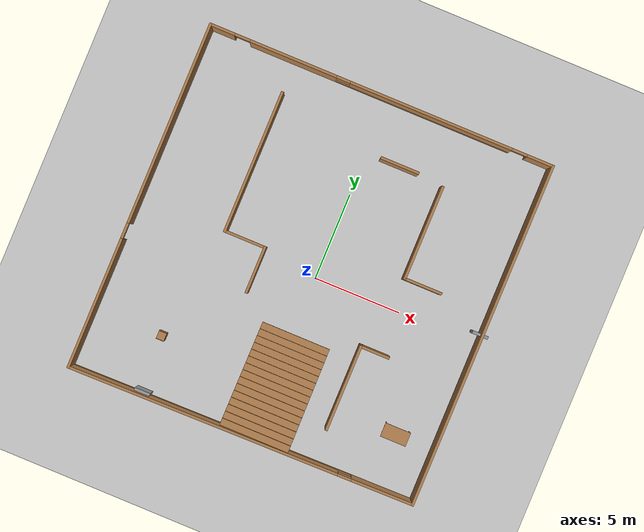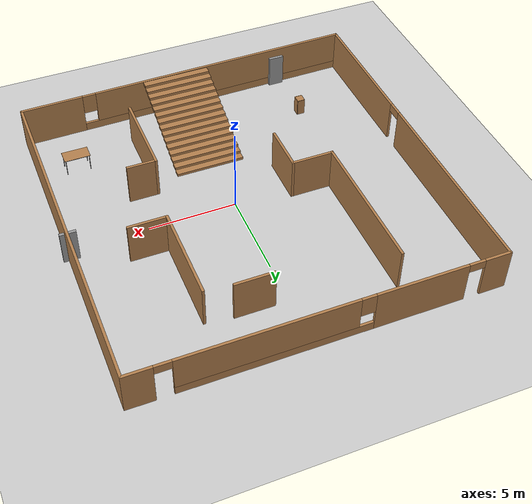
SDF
<sdf version="1.7">
 <world name="default">
  <light name="sun" type="directional">
   <pose>0 0 10 0 -0 0</pose>
   <diffuse>0.8 0.8 0.8 1</diffuse>
   <specular>0.2 0.2 0.2 1</specular>
   <attenuation>
    <range>1000</range>
    <constant>0.9</constant>
    <linear>0.01</linear>
    <quadratic>0.001</quadratic>
   </attenuation>
   <direction>-0.5 0.1 -0.9</direction>
   <spot><inner_angle>0</inner_angle><outer_angle>0</outer_angle><falloff>0</falloff></spot>
  </light>
  <model name="ground_plane">
   <static>1</static>
   <link name="link">
    <collision name="collision">
     <geometry><plane><normal>0 0 1</normal><size>100 100</size></plane></geometry>
     <surface><friction><ode><mu>100</mu><mu2>50</mu2></ode></friction></surface>
    </collision>
    <visual name="visual">
     <cast_shadows>0</cast_shadows>
     <geometry><plane><normal>0 0 1</normal><size>100 100</size></plane></geometry>
     <material>
      <script><uri>file://media/materials/scripts/gazebo.material</uri><name>Gazebo/Grey</name></script>
     </material>
    </visual>
   </link>
  </model>
  <gravity>0 0 -9.8</gravity>
  <magnetic_field>6e-06 2.3e-05 -4.2e-05</magnetic_field>
  <atmosphere type="adiabatic"/>
  <physics type="ode">
   <max_step_size>0.001</max_step_size>
   <real_time_factor>1</real_time_factor>
   <real_time_update_rate>0</real_time_update_rate>
   <ode>
    <solver><type>quick</type><iters>20</iters><sor>1.3</sor></solver>
    <constraints>
     <cfm>0.0001</cfm>
     <erp>0.2</erp>
     <contact_max_correcting_vel>1.0</contact_max_correcting_vel>
     <contact_surface_layer>0.01</contact_surface_layer>
    </constraints>
   </ode>
  </physics>
  <scene><ambient>0.4 0.4 0.4 1</ambient><background>0.7 0.7 0.7 1</background><shadows>1</shadows></scene>
  <plugin name="gazebo_ros_state" filename="libgazebo_ros_state.so">
   <ros><namespace>/gazebo</namespace></ros>
   <update_rate>50.0</update_rate>
  </plugin>
  <audio><device>default</device></audio>
  <spherical_coordinates>
   <surface_model>EARTH_WGS84</surface_model>
   <latitude_deg>0</latitude_deg>
   <longitude_deg>0</longitude_deg>
   <elevation>0</elevation>
   <heading_deg>0</heading_deg>
  </spherical_coordinates>
  <model name="world1.world">
   <pose>-0.4935 0.496537 0 0 -0 0</pose>
   <link name="Door_3">
    <collision name="Door_3_Collision">
     <geometry><box><size>0.9 0.17 2</size></box></geometry>
     <pose>0 0 1 0 -0 0</pose>
    </collision>
    <visual name="Door_3_Visual">
     <pose>0 0 1 0 -0 0</pose>
     <geometry><box><size>0.9 0.17 2</size></box></geometry>
     <material>
      <script><uri>file://media/materials/scripts/gazebo.material</uri><name>Gazebo/Grey</name></script>
     </material>
    </visual>
    <pose>-5.86221 -9.81218 0 0 -0 0</pose>
   </link>
   <link name="Door_4">
    <collision name="Door_4_Collision">
     <geometry><box><size>0.9 0.17 2</size></box></geometry>
     <pose>0 0 1 0 -0 0</pose>
    </collision>
    <visual name="Door_4_Visual">
     <pose>0 0 1 0 -0 0</pose>
     <geometry><box><size>0.9 0.17 2</size></box></geometry>
     <material>
      <script><uri>file://media/materials/scripts/gazebo.material</uri><name>Gazebo/Grey</name></script>
     </material>
    </visual>
    <pose>9.95489 0.103926 0 0 -0 0</pose>
   </link>
   <link name="Stairs_0">
    <visual name="Stairs_0_Visual_0">
     <pose>0.723174 -4.03294 0.083333 0 -0 0</pose>
     <geometry><box><size>4.01133 0.397588 0.166667</size></box></geometry>
     <material>
      <script><uri>file://media/materials/scripts/gazebo.material</uri><name>Gazebo/Wood</name></script>
      <ambient>1 1 1 1</ambient>
     </material>
     <meta><layer>0</layer></meta>
    </visual>
    <collision name="Stairs_0_Collision_0">
     <geometry><box><size>4.01133 0.397588 0.166667</size></box></geometry>
     <pose>0.723174 -4.03294 0.083333 0 -0 0</pose>
    </collision>
    <visual name="Stairs_0_Visual_1">
     <pose>0.723174 -4.43053 0.25 0 -0 0</pose>
     <geometry><box><size>4.01133 0.397588 0.166667</size></box></geometry>
     <material>
      <script><uri>file://media/materials/scripts/gazebo.material</uri><name>Gazebo/Wood</name></script>
      <ambient>1 1 1 1</ambient>
     </material>
     <meta><layer>0</layer></meta>
    </visual>
    <collision name="Stairs_0_Collision_1">
     <geometry><box><size>4.01133 0.397588 0.166667</size></box></geometry>
     <pose>0.723174 -4.43053 0.25 0 -0 0</pose>
    </collision>
    <visual name="Stairs_0_Visual_2">
     <pose>0.723174 -4.82812 0.416667 0 -0 0</pose>
     <geometry><box><size>4.01133 0.397588 0.166667</size></box></geometry>
     <material>
      <script><uri>file://media/materials/scripts/gazebo.material</uri><name>Gazebo/Wood</name></script>
      <ambient>1 1 1 1</ambient>
     </material>
     <meta><layer>0</layer></meta>
    </visual>
    <collision name="Stairs_0_Collision_2">
     <geometry><box><size>4.01133 0.397588 0.166667</size></box></geometry>
     <pose>0.723174 -4.82812 0.416667 0 -0 0</pose>
    </collision>
    <visual name="Stairs_0_Visual_3">
     <pose>0.723174 -5.2257 0.583333 0 -0 0</pose>
     <geometry><box><size>4.01133 0.397588 0.166667</size></box></geometry>
     <material>
      <script><uri>file://media/materials/scripts/gazebo.material</uri><name>Gazebo/Wood</name></script>
      <ambient>1 1 1 1</ambient>
     </material>
     <meta><layer>0</layer></meta>
    </visual>
    <collision name="Stairs_0_Collision_3">
     <geometry><box><size>4.01133 0.397588 0.166667</size></box></geometry>
     <pose>0.723174 -5.2257 0.583333 0 -0 0</pose>
    </collision>
    <visual name="Stairs_0_Visual_4">
     <pose>0.723174 -5.62329 0.75 0 -0 0</pose>
     <geometry><box><size>4.01133 0.397588 0.166667</size></box></geometry>
     <material>
      <script><uri>file://media/materials/scripts/gazebo.material</uri><name>Gazebo/Wood</name></script>
      <ambient>1 1 1 1</ambient>
     </material>
     <meta><layer>0</layer></meta>
    </visual>
    <collision name="Stairs_0_Collision_4">
     <geometry><box><size>4.01133 0.397588 0.166667</size></box></geometry>
     <pose>0.723174 -5.62329 0.75 0 -0 0</pose>
    </collision>
    <visual name="Stairs_0_Visual_5">
     <pose>0.723174 -6.02088 0.916667 0 -0 0</pose>
     <geometry><box><size>4.01133 0.397588 0.166667</size></box></geometry>
     <material>
      <script><uri>file://media/materials/scripts/gazebo.material</uri><name>Gazebo/Wood</name></script>
      <ambient>1 1 1 1</ambient>
     </material>
     <meta><layer>0</layer></meta>
    </visual>
    <collision name="Stairs_0_Collision_5">
     <geometry><box><size>4.01133 0.397588 0.166667</size></box></geometry>
     <pose>0.723174 -6.02088 0.916667 0 -0 0</pose>
    </collision>
    <visual name="Stairs_0_Visual_6">
     <pose>0.723174 -6.41847 1.08333 0 -0 0</pose>
     <geometry><box><size>4.01133 0.397588 0.166667</size></box></geometry>
     <material>
      <script><uri>file://media/materials/scripts/gazebo.material</uri><name>Gazebo/Wood</name></script>
      <ambient>1 1 1 1</ambient>
     </material>
     <meta><layer>0</layer></meta>
    </visual>
    <collision name="Stairs_0_Collision_6">
     <geometry><box><size>4.01133 0.397588 0.166667</size></box></geometry>
     <pose>0.723174 -6.41847 1.08333 0 -0 0</pose>
    </collision>
    <visual name="Stairs_0_Visual_7">
     <pose>0.723174 -6.81606 1.25 0 -0 0</pose>
     <geometry><box><size>4.01133 0.397588 0.166667</size></box></geometry>
     <material>
      <script><uri>file://media/materials/scripts/gazebo.material</uri><name>Gazebo/Wood</name></script>
      <ambient>1 1 1 1</ambient>
     </material>
     <meta><layer>0</layer></meta>
    </visual>
    <collision name="Stairs_0_Collision_7">
     <geometry><box><size>4.01133 0.397588 0.166667</size></box></geometry>
     <pose>0.723174 -6.81606 1.25 0 -0 0</pose>
    </collision>
    <visual name="Stairs_0_Visual_8">
     <pose>0.723174 -7.21364 1.41667 0 -0 0</pose>
     <geometry><box><size>4.01133 0.397588 0.166667</size></box></geometry>
     <material>
      <script><uri>file://media/materials/scripts/gazebo.material</uri><name>Gazebo/Wood</name></script>
      <ambient>1 1 1 1</ambient>
     </material>
     <meta><layer>0</layer></meta>
    </visual>
    <collision name="Stairs_0_Collision_8">
     <geometry><box><size>4.01133 0.397588 0.166667</size></box></geometry>
     <pose>0.723174 -7.21364 1.41667 0 -0 0</pose>
    </collision>
    <visual name="Stairs_0_Visual_9">
     <pose>0.723174 -7.61123 1.58333 0 -0 0</pose>
     <geometry><box><size>4.01133 0.397588 0.166667</size></box></geometry>
     <material>
      <script><uri>file://media/materials/scripts/gazebo.material</uri><name>Gazebo/Wood</name></script>
      <ambient>1 1 1 1</ambient>
     </material>
     <meta><layer>0</layer></meta>
    </visual>
    <collision name="Stairs_0_Collision_9">
     <geometry><box><size>4.01133 0.397588 0.166667</size></box></geometry>
     <pose>0.723174 -7.61123 1.58333 0 -0 0</pose>
    </collision>
    <visual name="Stairs_0_Visual_10">
     <pose>0.723174 -8.00882 1.75 0 -0 0</pose>
     <geometry><box><size>4.01133 0.397588 0.166667</size></box></geometry>
     <material>
      <script><uri>file://media/materials/scripts/gazebo.material</uri><name>Gazebo/Wood</name></script>
      <ambient>1 1 1 1</ambient>
     </material>
     <meta><layer>0</layer></meta>
    </visual>
    <collision name="Stairs_0_Collision_10">
     <geometry><box><size>4.01133 0.397588 0.166667</size></box></geometry>
     <pose>0.723174 -8.00882 1.75 0 -0 0</pose>
    </collision>
    <visual name="Stairs_0_Visual_11">
     <pose>0.723174 -8.40641 1.91667 0 -0 0</pose>
     <geometry><box><size>4.01133 0.397588 0.166667</size></box></geometry>
     <material>
      <script><uri>file://media/materials/scripts/gazebo.material</uri><name>Gazebo/Wood</name></script>
      <ambient>1 1 1 1</ambient>
     </material>
     <meta><layer>0</layer></meta>
    </visual>
    <collision name="Stairs_0_Collision_11">
     <geometry><box><size>4.01133 0.397588 0.166667</size></box></geometry>
     <pose>0.723174 -8.40641 1.91667 0 -0 0</pose>
    </collision>
    <visual name="Stairs_0_Visual_12">
     <pose>0.723174 -8.804 2.08333 0 -0 0</pose>
     <geometry><box><size>4.01133 0.397588 0.166667</size></box></geometry>
     <material>
      <script><uri>file://media/materials/scripts/gazebo.material</uri><name>Gazebo/Wood</name></script>
      <ambient>1 1 1 1</ambient>
     </material>
     <meta><layer>0</layer></meta>
    </visual>
    <collision name="Stairs_0_Collision_12">
     <geometry><box><size>4.01133 0.397588 0.166667</size></box></geometry>
     <pose>0.723174 -8.804 2.08333 0 -0 0</pose>
    </collision>
    <visual name="Stairs_0_Visual_13">
     <pose>0.723174 -9.20158 2.25 0 -0 0</pose>
     <geometry><box><size>4.01133 0.397588 0.166667</size></box></geometry>
     <material>
      <script><uri>file://media/materials/scripts/gazebo.material</uri><name>Gazebo/Wood</name></script>
      <ambient>1 1 1 1</ambient>
     </material>
     <meta><layer>0</layer></meta>
    </visual>
    <collision name="Stairs_0_Collision_13">
     <geometry><box><size>4.01133 0.397588 0.166667</size></box></geometry>
     <pose>0.723174 -9.20158 2.25 0 -0 0</pose>
    </collision>
    <visual name="Stairs_0_Visual_14">
     <pose>0.723174 -9.59917 2.41667 0 -0 0</pose>
     <geometry><box><size>4.01133 0.397588 0.166667</size></box></geometry>
     <material>
      <script><uri>file://media/materials/scripts/gazebo.material</uri><name>Gazebo/Wood</name></script>
      <ambient>1 1 1 1</ambient>
     </material>
     <meta><layer>0</layer></meta>
    </visual>
    <collision name="Stairs_0_Collision_14">
     <geometry><box><size>4.01133 0.397588 0.166667</size></box></geometry>
     <pose>0.723174 -9.59917 2.41667 0 -0 0</pose>
    </collision>
   </link>
   <link name="Wall_10">
    <collision name="Wall_10_Collision">
     <geometry><box><size>2.75 0.15 2.5</size></box></geometry>
     <pose>0 0 1.25 0 -0 0</pose>
    </collision>
    <visual name="Wall_10_Visual">
     <pose>0 0 1.25 0 -0 0</pose>
     <geometry><box><size>2.75 0.15 2.5</size></box></geometry>
     <material>
      <script><uri>file://media/materials/scripts/gazebo.material</uri><name>Gazebo/Wood</name></script>
      <ambient>1 1 1 1</ambient>
     </material>
     <meta><layer>0</layer></meta>
    </visual>
    <pose>-2.69094 -1.29627 0 0 -0 -1.5708</pose>
   </link>
   <link name="Wall_12">
    <collision name="Wall_12_Collision">
     <geometry><box><size>5.5 0.15 2.5</size></box></geometry>
     <pose>0 0 1.25 0 -0 0</pose>
    </collision>
    <visual name="Wall_12_Visual">
     <pose>0 0 1.25 0 -0 0</pose>
     <geometry><box><size>5.5 0.15 2.5</size></box></geometry>
     <material>
      <script><uri>file://media/materials/scripts/gazebo.material</uri><name>Gazebo/Wood</name></script>
      <ambient>1 1 1 1</ambient>
     </material>
     <meta><layer>0</layer></meta>
    </visual>
    <pose>4.96641 4.02952 0 0 -0 -1.5708</pose>
   </link>
   <link name="Wall_13">
    <collision name="Wall_13_Collision">
     <geometry><box><size>2.25 0.15 2.5</size></box></geometry>
     <pose>0 0 1.25 0 -0 0</pose>
    </collision>
    <visual name="Wall_13_Visual">
     <pose>0 0 1.25 0 -0 0</pose>
     <geometry><box><size>2.25 0.15 2.5</size></box></geometry>
     <material>
      <script><uri>file://media/materials/scripts/gazebo.material</uri><name>Gazebo/Wood</name></script>
      <ambient>1 1 1 1</ambient>
     </material>
     <meta><layer>0</layer></meta>
    </visual>
    <pose>6.01642 1.35452 0 0 -0 0</pose>
   </link>
   <link name="Wall_15">
    <collision name="Wall_15_Collision">
     <geometry><box><size>5 0.15 2.5</size></box></geometry>
     <pose>0 0 1.25 0 -0 0</pose>
    </collision>
    <visual name="Wall_15_Visual">
     <pose>0 0 1.25 0 -0 0</pose>
     <geometry><box><size>5 0.15 2.5</size></box></geometry>
     <material>
      <script><uri>file://media/materials/scripts/gazebo.material</uri><name>Gazebo/Wood</name></script>
      <ambient>1 1 1 1</ambient>
     </material>
     <meta><layer>0</layer></meta>
    </visual>
    <pose>4.17556 -5.37962 0 0 -0 1.5708</pose>
   </link>
   <link name="Wall_16">
    <collision name="Wall_16_Collision">
     <geometry><box><size>1.75 0.15 2.5</size></box></geometry>
     <pose>0 0 1.25 0 -0 0</pose>
    </collision>
    <visual name="Wall_16_Visual">
     <pose>0 0 1.25 0 -0 0</pose>
     <geometry><box><size>1.75 0.15 2.5</size></box></geometry>
     <material>
      <script><uri>file://media/materials/scripts/gazebo.material</uri><name>Gazebo/Wood</name></script>
      <ambient>1 1 1 1</ambient>
     </material>
     <meta><layer>0</layer></meta>
    </visual>
    <pose>4.97556 -2.95462 0 0 -0 0</pose>
   </link>
   <link name="Wall_18">
    <collision name="Wall_18_Collision">
     <geometry><box><size>2.25 0.15 2.5</size></box></geometry>
     <pose>0 0 1.25 0 -0 0</pose>
    </collision>
    <visual name="Wall_18_Visual">
     <pose>0 0 1.25 0 -0 0</pose>
     <geometry><box><size>2.25 0.15 2.5</size></box></geometry>
     <material>
      <script><uri>file://media/materials/scripts/gazebo.material</uri><name>Gazebo/Wood</name></script>
      <ambient>1 1 1 1</ambient>
     </material>
     <meta><layer>0</layer></meta>
    </visual>
    <pose>2.36632 6.91745 0 0 -0 0</pose>
   </link>
   <link name="Wall_3">
    <pose>-10.05 0.000463 0 0 -0 1.5708</pose>
    <visual name="Wall_3_Visual_0">
     <pose>-6.31559 0 1.25 0 -0 0</pose>
     <geometry><box><size>7.61882 0.15 2.5</size></box></geometry>
     <material>
      <script><uri>file://media/materials/scripts/gazebo.material</uri><name>Gazebo/Wood</name></script>
      <ambient>1 1 1 1</ambient>
     </material>
     <meta><layer>0</layer></meta>
    </visual>
    <collision name="Wall_3_Collision_0">
     <geometry><box><size>7.61882 0.15 2.5</size></box></geometry>
     <pose>-6.31559 0 1.25 0 -0 0</pose>
    </collision>
    <visual name="Wall_3_Visual_1">
     <pose>4.25941 0 1.25 0 -0 0</pose>
     <geometry><box><size>11.7312 0.15 2.5</size></box></geometry>
     <material>
      <script><uri>file://media/materials/scripts/gazebo.material</uri><name>Gazebo/Wood</name></script>
      <ambient>1 1 1 1</ambient>
     </material>
     <meta><layer>0</layer></meta>
    </visual>
    <collision name="Wall_3_Collision_1">
     <geometry><box><size>11.7312 0.15 2.5</size></box></geometry>
     <pose>4.25941 0 1.25 0 -0 0</pose>
    </collision>
    <visual name="Wall_3_Visual_2">
     <pose>-2.05618 0 2.25 0 -0 0</pose>
     <geometry><box><size>0.9 0.15 0.5</size></box></geometry>
     <material>
      <script><uri>file://media/materials/scripts/gazebo.material</uri><name>Gazebo/Wood</name></script>
      <ambient>1 1 1 1</ambient>
     </material>
     <meta><layer>0</layer></meta>
    </visual>
    <collision name="Wall_3_Collision_2">
     <geometry><box><size>0.9 0.15 0.5</size></box></geometry>
     <pose>-2.05618 0 2.25 0 -0 0</pose>
    </collision>
   </link>
   <link name="Wall_4">
    <pose>-0 10.0505 0 0 -0 0</pose>
    <visual name="Wall_4_Visual_0">
     <pose>-9.37447 0 1.25 0 -0 0</pose>
     <geometry><box><size>1.50106 0.15 2.5</size></box></geometry>
     <material>
      <script><uri>file://media/materials/scripts/gazebo.material</uri><name>Gazebo/Wood</name></script>
      <ambient>1 1 1 1</ambient>
     </material>
     <meta><layer>0</layer></meta>
    </visual>
    <collision name="Wall_4_Collision_0">
     <geometry><box><size>1.50106 0.15 2.5</size></box></geometry>
     <pose>-9.37447 0 1.25 0 -0 0</pose>
    </collision>
    <visual name="Wall_4_Visual_1">
     <pose>-5.18324 0 1.25 0 -0 0</pose>
     <geometry><box><size>5.08141 0.15 2.5</size></box></geometry>
     <material>
      <script><uri>file://media/materials/scripts/gazebo.material</uri><name>Gazebo/Wood</name></script>
      <ambient>1 1 1 1</ambient>
     </material>
     <meta><layer>0</layer></meta>
    </visual>
    <collision name="Wall_4_Collision_1">
     <geometry><box><size>5.08141 0.15 2.5</size></box></geometry>
     <pose>-5.18324 0 1.25 0 -0 0</pose>
    </collision>
    <visual name="Wall_4_Visual_2">
     <pose>9.33721 0 1.25 0 -0 0</pose>
     <geometry><box><size>1.57558 0.15 2.5</size></box></geometry>
     <material>
      <script><uri>file://media/materials/scripts/gazebo.material</uri><name>Gazebo/Wood</name></script>
      <ambient>1 1 1 1</ambient>
     </material>
     <meta><layer>0</layer></meta>
    </visual>
    <collision name="Wall_4_Collision_2">
     <geometry><box><size>1.57558 0.15 2.5</size></box></geometry>
     <pose>9.33721 0 1.25 0 -0 0</pose>
    </collision>
    <visual name="Wall_4_Visual_3">
     <pose>2.50344 0 0.25 0 -0 0</pose>
     <geometry><box><size>10.2919 0.15 0.5</size></box></geometry>
     <material>
      <script><uri>file://media/materials/scripts/gazebo.material</uri><name>Gazebo/Wood</name></script>
      <ambient>1 1 1 1</ambient>
     </material>
     <meta><layer>0</layer></meta>
    </visual>
    <collision name="Wall_4_Collision_3">
     <geometry><box><size>10.2919 0.15 0.5</size></box></geometry>
     <pose>2.50344 0 0.25 0 -0 0</pose>
    </collision>
    <visual name="Wall_4_Visual_4">
     <pose>2.90344 0 1.5 0 -0 0</pose>
     <geometry><box><size>9.49195 0.15 2</size></box></geometry>
     <material>
      <script><uri>file://media/materials/scripts/gazebo.material</uri><name>Gazebo/Wood</name></script>
      <ambient>1 1 1 1</ambient>
     </material>
     <meta><layer>0</layer></meta>
    </visual>
    <collision name="Wall_4_Collision_4">
     <geometry><box><size>9.49195 0.15 2</size></box></geometry>
     <pose>2.90344 0 1.5 0 -0 0</pose>
    </collision>
    <visual name="Wall_4_Visual_5">
     <pose>-2.24253 0 1.9 0 -0 0</pose>
     <geometry><box><size>0.8 0.15 1.2</size></box></geometry>
     <material>
      <script><uri>file://media/materials/scripts/gazebo.material</uri><name>Gazebo/Wood</name></script>
      <ambient>1 1 1 1</ambient>
     </material>
     <meta><layer>0</layer></meta>
    </visual>
    <collision name="Wall_4_Collision_5">
     <geometry><box><size>0.8 0.15 1.2</size></box></geometry>
     <pose>-2.24253 0 1.9 0 -0 0</pose>
    </collision>
    <visual name="Wall_4_Visual_6">
     <pose>-8.17394 0 2.25 0 -0 0</pose>
     <geometry><box><size>0.9 0.15 0.5</size></box></geometry>
     <material>
      <script><uri>file://media/materials/scripts/gazebo.material</uri><name>Gazebo/Wood</name></script>
      <ambient>1 1 1 1</ambient>
     </material>
     <meta><layer>0</layer></meta>
    </visual>
    <collision name="Wall_4_Collision_6">
     <geometry><box><size>0.9 0.15 0.5</size></box></geometry>
     <pose>-8.17394 0 2.25 0 -0 0</pose>
    </collision>
    <visual name="Wall_4_Visual_7">
     <pose>8.09942 0 2.25 0 -0 0</pose>
     <geometry><box><size>0.9 0.15 0.5</size></box></geometry>
     <material>
      <script><uri>file://media/materials/scripts/gazebo.material</uri><name>Gazebo/Wood</name></script>
      <ambient>1 1 1 1</ambient>
     </material>
     <meta><layer>0</layer></meta>
    </visual>
    <collision name="Wall_4_Collision_7">
     <geometry><box><size>0.9 0.15 0.5</size></box></geometry>
     <pose>8.09942 0 2.25 0 -0 0</pose>
    </collision>
   </link>
   <link name="Wall_5">
    <collision name="Wall_5_Collision">
     <geometry><box><size>20 0.15 2.5</size></box></geometry>
     <pose>0 0 1.25 0 -0 0</pose>
    </collision>
    <visual name="Wall_5_Visual">
     <pose>0 0 1.25 0 -0 0</pose>
     <geometry><box><size>20 0.15 2.5</size></box></geometry>
     <material>
      <script><uri>file://media/materials/scripts/gazebo.material</uri><name>Gazebo/Wood</name></script>
      <ambient>1 1 1 1</ambient>
     </material>
     <meta><layer>0</layer></meta>
    </visual>
    <pose>10.05 0.125463 0 0 -0 -1.5708</pose>
   </link>
   <link name="Wall_6">
    <pose>-0 -9.92454 0 0 -0 -3.12915</pose>
    <visual name="Wall_6_Visual_0">
     <pose>-8.29294 0 1.25 0 -0 0</pose>
     <geometry><box><size>3.66567 0.15 2.5</size></box></geometry>
     <material>
      <script><uri>file://media/materials/scripts/gazebo.material</uri><name>Gazebo/Wood</name></script>
      <ambient>1 1 1 1</ambient>
     </material>
     <meta><layer>0</layer></meta>
    </visual>
    <collision name="Wall_6_Collision_0">
     <geometry><box><size>3.66567 0.15 2.5</size></box></geometry>
     <pose>-8.29294 0 1.25 0 -0 0</pose>
    </collision>
    <visual name="Wall_6_Visual_1">
     <pose>1.83284 0 0.25 0 -0 0</pose>
     <geometry><box><size>16.5859 0.15 0.5</size></box></geometry>
     <material>
      <script><uri>file://media/materials/scripts/gazebo.material</uri><name>Gazebo/Wood</name></script>
      <ambient>1 1 1 1</ambient>
     </material>
     <meta><layer>0</layer></meta>
    </visual>
    <collision name="Wall_6_Collision_1">
     <geometry><box><size>16.5859 0.15 0.5</size></box></geometry>
     <pose>1.83284 0 0.25 0 -0 0</pose>
    </collision>
    <visual name="Wall_6_Visual_2">
     <pose>2.23284 0 1.5 0 -0 0</pose>
     <geometry><box><size>15.7859 0.15 2</size></box></geometry>
     <material>
      <script><uri>file://media/materials/scripts/gazebo.material</uri><name>Gazebo/Wood</name></script>
      <ambient>1 1 1 1</ambient>
     </material>
     <meta><layer>0</layer></meta>
    </visual>
    <collision name="Wall_6_Collision_2">
     <geometry><box><size>15.7859 0.15 2</size></box></geometry>
     <pose>2.23284 0 1.5 0 -0 0</pose>
    </collision>
    <visual name="Wall_6_Visual_3">
     <pose>-6.0601 0 1.9 0 -0 0</pose>
     <geometry><box><size>0.8 0.15 1.2</size></box></geometry>
     <material>
      <script><uri>file://media/materials/scripts/gazebo.material</uri><name>Gazebo/Wood</name></script>
      <ambient>1 1 1 1</ambient>
     </material>
     <meta><layer>0</layer></meta>
    </visual>
    <collision name="Wall_6_Collision_3">
     <geometry><box><size>0.8 0.15 1.2</size></box></geometry>
     <pose>-6.0601 0 1.9 0 -0 0</pose>
    </collision>
   </link>
   <link name="Wall_8">
    <collision name="Wall_8_Collision">
     <geometry><box><size>8.25 0.15 2.5</size></box></geometry>
     <pose>0 0 1.25 0 -0 0</pose>
    </collision>
    <visual name="Wall_8_Visual">
     <pose>0 0 1.25 0 -0 0</pose>
     <geometry><box><size>8.25 0.15 2.5</size></box></geometry>
     <material>
      <script><uri>file://media/materials/scripts/gazebo.material</uri><name>Gazebo/Wood</name></script>
      <ambient>1 1 1 1</ambient>
     </material>
     <meta><layer>0</layer></meta>
    </visual>
    <pose>-5.04094 4.05373 0 0 -0 -1.5708</pose>
   </link>
   <link name="Wall_9">
    <collision name="Wall_9_Collision">
     <geometry><box><size>2.5 0.15 2.5</size></box></geometry>
     <pose>0 0 1.25 0 -0 0</pose>
    </collision>
    <visual name="Wall_9_Visual">
     <pose>0 0 1.25 0 -0 0</pose>
     <geometry><box><size>2.5 0.15 2.5</size></box></geometry>
     <material>
      <script><uri>file://media/materials/scripts/gazebo.material</uri><name>Gazebo/Wood</name></script>
      <ambient>1 1 1 1</ambient>
     </material>
     <meta><layer>0</layer></meta>
    </visual>
    <pose>-3.86594 0.003728 0 0 -0 0</pose>
   </link>
   <static>1</static>
  </model>
  <model name="cabinet">
   <static>1</static>
   <link name="cabinet_bottom_plate">
    <inertial>
     <pose>0 0 -1 0 -0 0</pose>
     <inertia><ixx>2.05</ixx><ixy>0</ixy><ixz>0</ixz><iyy>2.05</iyy><iyz>0</iyz><izz>2.05</izz></inertia>
     <mass>25</mass>
    </inertial>
    <collision name="cabinet_bottom_plate_geom">
     <pose>0 0 0.01 0 -0 0</pose>
     <geometry><box><size>0.45 0.45 0.02</size></box></geometry>
    </collision>
    <visual name="cabinet_bottom_plate_geom_visual">
     <pose>0 0 0.01 0 -0 0</pose>
     <geometry><box><size>0.45 0.45 0.02</size></box></geometry>
     <material>
      <script><uri>file://media/materials/scripts/gazebo.material</uri><name>Gazebo/Wood</name></script>
     </material>
    </visual>
    <collision name="cabinet_bottom_plate_geom_cabinet_back_plate">
     <pose>0.235 0 0.51 0 -0 0</pose>
     <geometry><box><size>0.02 0.45 1.02</size></box></geometry>
    </collision>
    <visual name="cabinet_bottom_plate_geom_cabinet_back_plate_visual">
     <pose>0.235 0 0.51 0 -0 0</pose>
     <geometry><box><size>0.02 0.45 1.02</size></box></geometry>
     <material>
      <script><uri>file://media/materials/scripts/gazebo.material</uri><name>Gazebo/Wood</name></script>
     </material>
    </visual>
    <collision name="cabinet_bottom_plate_geom_cabinet_left_plate">
     <pose>0 0.235 0.51 0 -0 0</pose>
     <geometry><box><size>0.45 0.02 1.02</size></box></geometry>
    </collision>
    <visual name="cabinet_bottom_plate_geom_cabinet_left_plate_visual">
     <pose>0 0.235 0.51 0 -0 0</pose>
     <geometry><box><size>0.45 0.02 1.02</size></box></geometry>
     <material>
      <script><uri>file://media/materials/scripts/gazebo.material</uri><name>Gazebo/Wood</name></script>
     </material>
    </visual>
    <collision name="cabinet_bottom_plate_geom_cabinet_middle_plate">
     <pose>0 0 0.51 0 -0 0</pose>
     <geometry><box><size>0.45 0.45 0.02</size></box></geometry>
    </collision>
    <visual name="cabinet_bottom_plate_geom_cabinet_middle_plate_visual">
     <pose>0 0 0.51 0 -0 0</pose>
     <geometry><box><size>0.45 0.45 0.02</size></box></geometry>
     <material>
      <script><uri>file://media/materials/scripts/gazebo.material</uri><name>Gazebo/Wood</name></script>
     </material>
    </visual>
    <collision name="cabinet_bottom_plate_geom_cabinet_right_plate">
     <pose>0 -0.235 0.51 0 -0 0</pose>
     <geometry><box><size>0.45 0.02 1.02</size></box></geometry>
    </collision>
    <visual name="cabinet_bottom_plate_geom_cabinet_right_plate_visual">
     <pose>0 -0.235 0.51 0 -0 0</pose>
     <geometry><box><size>0.45 0.02 1.02</size></box></geometry>
     <material>
      <script><uri>file://media/materials/scripts/gazebo.material</uri><name>Gazebo/Wood</name></script>
     </material>
    </visual>
    <collision name="cabinet_bottom_plate_geom_cabinet_top_plate">
     <pose>0 0 1.01 0 -0 0</pose>
     <geometry><box><size>0.45 0.45 0.02</size></box></geometry>
    </collision>
    <visual name="cabinet_bottom_plate_geom_cabinet_top_plate_visual">
     <pose>0 0 1.01 0 -0 0</pose>
     <geometry><box><size>0.45 0.45 0.02</size></box></geometry>
     <material>
      <script><uri>file://media/materials/scripts/gazebo.material</uri><name>Gazebo/Wood</name></script>
     </material>
    </visual>
   </link>
   <pose>-6.60722 -6.15342 0 0 -0 0</pose>
  </model>
  <model name="table">
   <static>1</static>
   <link name="link">
    <collision name="surface">
     <pose>0 0 1 0 -0 0</pose>
     <geometry><box><size>1.5 0.8 0.03</size></box></geometry>
     <surface><friction><ode><mu>0.6</mu><mu2>0.6</mu2></ode></friction></surface>
    </collision>
    <visual name="visual1">
     <pose>0 0 1 0 -0 0</pose>
     <geometry><box><size>1.5 0.8 0.03</size></box></geometry>
     <material>
      <script><uri>file://media/materials/scripts/gazebo.material</uri><name>Gazebo/Wood</name></script>
     </material>
    </visual>
    <collision name="front_left_leg_1">
     <pose>0.68 0.38 0.5 0 -0 0</pose>
     <geometry><cylinder><radius>0.02</radius><length>1</length></cylinder></geometry>
    </collision>
    <visual name="front_left_leg">
     <pose>0.68 0.38 0.5 0 -0 0</pose>
     <geometry><cylinder><radius>0.02</radius><length>1</length></cylinder></geometry>
     <material>
      <script><uri>file://media/materials/scripts/gazebo.material</uri><name>Gazebo/Grey</name></script>
     </material>
    </visual>
    <collision name="front_right_leg_1">
     <pose>0.68 -0.38 0.5 0 -0 0</pose>
     <geometry><cylinder><radius>0.02</radius><length>1</length></cylinder></geometry>
    </collision>
    <visual name="front_right_leg">
     <pose>0.68 -0.38 0.5 0 -0 0</pose>
     <geometry><cylinder><radius>0.02</radius><length>1</length></cylinder></geometry>
     <material>
      <script><uri>file://media/materials/scripts/gazebo.material</uri><name>Gazebo/Grey</name></script>
     </material>
    </visual>
    <collision name="back_right_leg_1">
     <pose>-0.68 -0.38 0.5 0 -0 0</pose>
     <geometry><cylinder><radius>0.02</radius><length>1</length></cylinder></geometry>
    </collision>
    <visual name="back_right_leg">
     <pose>-0.68 -0.38 0.5 0 -0 0</pose>
     <geometry><cylinder><radius>0.02</radius><length>1</length></cylinder></geometry>
     <material>
      <script><uri>file://media/materials/scripts/gazebo.material</uri><name>Gazebo/Grey</name></script>
     </material>
    </visual>
    <collision name="back_left_leg_1">
     <pose>-0.68 0.38 0.5 0 -0 0</pose>
     <geometry><cylinder><radius>0.02</radius><length>1</length></cylinder></geometry>
    </collision>
    <visual name="back_left_leg">
     <pose>-0.68 0.38 0.5 0 -0 0</pose>
     <geometry><cylinder><radius>0.02</radius><length>1</length></cylinder></geometry>
     <material>
      <script><uri>file://media/materials/scripts/gazebo.material</uri><name>Gazebo/Grey</name></script>
     </material>
    </visual>
   </link>
   <pose>7.34433 -6.23458 0 0 -0 0</pose>
  </model>
 </world>
</sdf>
